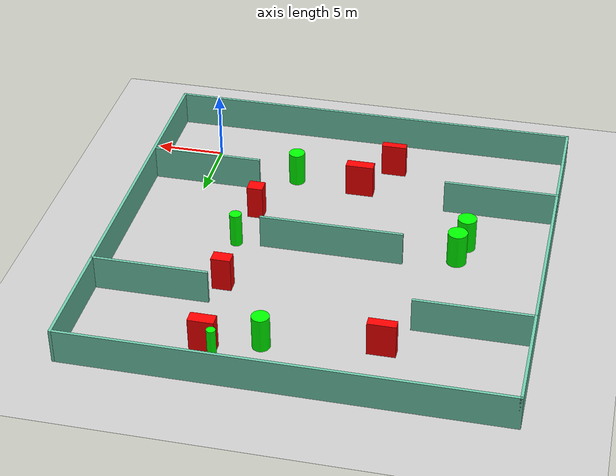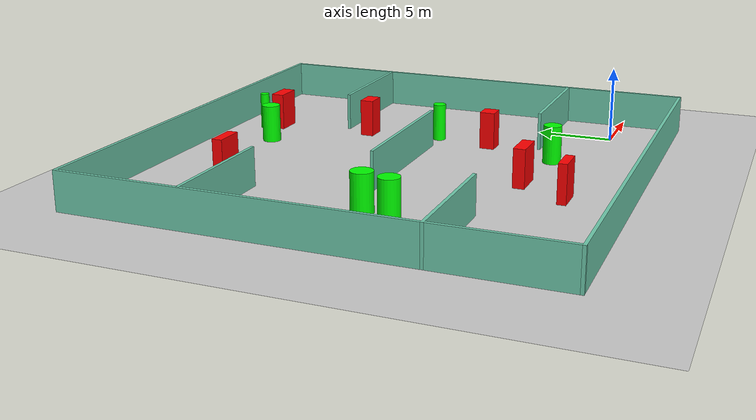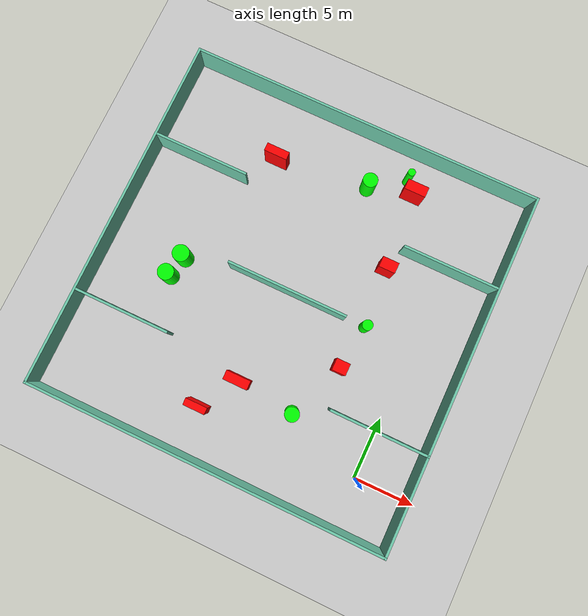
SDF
<sdf version="1.7">
 <world name="default">
  <light name="sun" type="directional">
   <pose>0 0 10 0 -0 0</pose>
   <diffuse>0.8 0.8 0.8 1</diffuse>
   <specular>0.2 0.2 0.2 1</specular>
   <attenuation>
    <range>1000</range>
    <constant>0.9</constant>
    <linear>0.01</linear>
    <quadratic>0.001</quadratic>
   </attenuation>
   <direction>-0.5 0.1 -0.9</direction>
   <spot><inner_angle>0</inner_angle><outer_angle>0</outer_angle><falloff>0</falloff></spot>
  </light>
  <model name="ground_plane">
   <static>1</static>
   <link name="link">
    <collision name="collision">
     <geometry><plane><normal>0 0 1</normal><size>100 100</size></plane></geometry>
     <surface>
      <contact><collide_bitmask>65535</collide_bitmask></contact>
      <friction><ode><mu>100</mu><mu2>50</mu2></ode></friction>
     </surface>
    </collision>
    <visual name="visual">
     <cast_shadows>0</cast_shadows>
     <geometry><plane><normal>0 0 1</normal><size>100 100</size></plane></geometry>
     <material>
      <script><uri>file://media/materials/scripts/gazebo.material</uri><name>Gazebo/Grey</name></script>
     </material>
    </visual>
   </link>
  </model>
  <gravity>0 0 -9.8</gravity>
  <magnetic_field>6e-06 2.3e-05 -4.2e-05</magnetic_field>
  <atmosphere type="adiabatic"/>
  <physics type="ode">
   <max_step_size>0.001</max_step_size>
   <real_time_factor>1</real_time_factor>
   <real_time_update_rate>1000</real_time_update_rate>
  </physics>
  <scene><ambient>0.4 0.4 0.4 1</ambient><background>0.7 0.7 0.7 1</background><shadows>1</shadows></scene>
  <spherical_coordinates>
   <surface_model>EARTH_WGS84</surface_model>
   <latitude_deg>0</latitude_deg>
   <longitude_deg>0</longitude_deg>
   <elevation>0</elevation>
   <heading_deg>0</heading_deg>
  </spherical_coordinates>
  <model name="my_base_walls">
   <link name="Wall_10">
    <collision name="Wall_10_Collision">
     <geometry><box><size>8.2 0.2 2.5</size></box></geometry>
     <pose>0 0 1.25 0 -0 0</pose>
    </collision>
    <visual name="Wall_10_Visual">
     <pose>0 0 1.25 0 -0 0</pose>
     <geometry><box><size>8.2 0.2 2.5</size></box></geometry>
     <material>
      <script><uri>file://media/materials/scripts/gazebo.material</uri><name>Gazebo/Grey</name></script>
      <ambient>0.435294 0.796078 0.67451 1</ambient>
     </material>
     <meta><layer>0</layer></meta>
    </visual>
    <pose>-11 -7 0 0 -0 0</pose>
   </link>
   <link name="Wall_12">
    <collision name="Wall_12_Collision">
     <geometry><box><size>8.2 0.2 2.5</size></box></geometry>
     <pose>0 0 1.25 0 -0 0</pose>
    </collision>
    <visual name="Wall_12_Visual">
     <pose>0 0 1.25 0 -0 0</pose>
     <geometry><box><size>8.2 0.2 2.5</size></box></geometry>
     <material>
      <script><uri>file://media/materials/scripts/gazebo.material</uri><name>Gazebo/Grey</name></script>
      <ambient>0.435294 0.796078 0.67451 1</ambient>
     </material>
     <meta><layer>0</layer></meta>
    </visual>
    <pose>-11 7 0 0 -0 0</pose>
   </link>
   <link name="Wall_14">
    <collision name="Wall_14_Collision">
     <geometry><box><size>8.2 0.2 2.5</size></box></geometry>
     <pose>0 0 1.25 0 -0 0</pose>
    </collision>
    <visual name="Wall_14_Visual">
     <pose>0 0 1.25 0 -0 0</pose>
     <geometry><box><size>8.2 0.2 2.5</size></box></geometry>
     <material>
      <script><uri>file://media/materials/scripts/gazebo.material</uri><name>Gazebo/Grey</name></script>
      <ambient>0.435294 0.796078 0.67451 1</ambient>
     </material>
     <meta><layer>0</layer></meta>
    </visual>
    <pose>11 7 0 0 -0 3.14159</pose>
   </link>
   <link name="Wall_16">
    <collision name="Wall_16_Collision">
     <geometry><box><size>10.2 0.2 2.5</size></box></geometry>
     <pose>0 0 1.25 0 -0 0</pose>
    </collision>
    <visual name="Wall_16_Visual">
     <pose>0 0 1.25 0 -0 0</pose>
     <geometry><box><size>10.2 0.2 2.5</size></box></geometry>
     <material>
      <script><uri>file://media/materials/scripts/gazebo.material</uri><name>Gazebo/Grey</name></script>
      <ambient>0.435294 0.796078 0.67451 1</ambient>
     </material>
     <meta><layer>0</layer></meta>
    </visual>
    <pose>0 0 0 0 -0 3.14159</pose>
   </link>
   <link name="Wall_2">
    <collision name="Wall_2_Collision">
     <geometry><box><size>30.2 0.2 2.5</size></box></geometry>
     <pose>0 0 1.25 0 -0 0</pose>
    </collision>
    <visual name="Wall_2_Visual">
     <pose>0 0 1.25 0 -0 0</pose>
     <geometry><box><size>30.2 0.2 2.5</size></box></geometry>
     <material>
      <script><uri>file://media/materials/scripts/gazebo.material</uri><name>Gazebo/Grey</name></script>
      <ambient>0.435294 0.796078 0.67451 1</ambient>
     </material>
     <meta><layer>0</layer></meta>
    </visual>
    <pose>0 -15 0 0 -0 3.14159</pose>
   </link>
   <link name="Wall_3">
    <collision name="Wall_3_Collision">
     <geometry><box><size>30.2 0.2 2.5</size></box></geometry>
     <pose>0 0 1.25 0 -0 0</pose>
    </collision>
    <visual name="Wall_3_Visual">
     <pose>0 0 1.25 0 -0 0</pose>
     <geometry><box><size>30.2 0.2 2.5</size></box></geometry>
     <material>
      <script><uri>file://media/materials/scripts/gazebo.material</uri><name>Gazebo/Grey</name></script>
      <ambient>0.435294 0.796078 0.67451 1</ambient>
     </material>
     <meta><layer>0</layer></meta>
    </visual>
    <pose>-15 0 0 0 -0 1.5708</pose>
   </link>
   <link name="Wall_4">
    <collision name="Wall_4_Collision">
     <geometry><box><size>30.2 0.2 2.5</size></box></geometry>
     <pose>0 0 1.25 0 -0 0</pose>
    </collision>
    <visual name="Wall_4_Visual">
     <pose>0 0 1.25 0 -0 0</pose>
     <geometry><box><size>30.2 0.2 2.5</size></box></geometry>
     <material>
      <script><uri>file://media/materials/scripts/gazebo.material</uri><name>Gazebo/Grey</name></script>
      <ambient>0.435294 0.796078 0.67451 1</ambient>
     </material>
     <meta><layer>0</layer></meta>
    </visual>
    <pose>0 15 0 0 -0 0</pose>
   </link>
   <link name="Wall_6">
    <collision name="Wall_6_Collision">
     <geometry><box><size>30.2 0.2 2.5</size></box></geometry>
     <pose>0 0 1.25 0 -0 0</pose>
    </collision>
    <visual name="Wall_6_Visual">
     <pose>0 0 1.25 0 -0 0</pose>
     <geometry><box><size>30.2 0.2 2.5</size></box></geometry>
     <material>
      <script><uri>file://media/materials/scripts/gazebo.material</uri><name>Gazebo/Grey</name></script>
      <ambient>0.435294 0.796078 0.67451 1</ambient>
     </material>
     <meta><layer>0</layer></meta>
    </visual>
    <pose>15 0 0 0 -0 1.5708</pose>
   </link>
   <link name="Wall_8">
    <collision name="Wall_8_Collision">
     <geometry><box><size>8.2 0.2 2.5</size></box></geometry>
     <pose>0 0 1.25 0 -0 0</pose>
    </collision>
    <visual name="Wall_8_Visual">
     <pose>0 0 1.25 0 -0 0</pose>
     <geometry><box><size>8.2 0.2 2.5</size></box></geometry>
     <material>
      <script><uri>file://media/materials/scripts/gazebo.material</uri><name>Gazebo/Grey</name></script>
      <ambient>0.435294 0.796078 0.67451 1</ambient>
     </material>
     <meta><layer>0</layer></meta>
    </visual>
    <pose>11 -7 0 0 -0 3.14159</pose>
   </link>
   <static>1</static>
   <pose>-11 11 0 0 -0 0</pose>
  </model>
  <model name="cylinder1">
   <static>1</static>
   <link name="link">
    <inertial>
     <mass>1</mass>
     <inertia><ixx>0.5</ixx><ixy>0</ixy><ixz>0</ixz><iyy>0.5</iyy><iyz>0</iyz><izz>1</izz></inertia>
    </inertial>
    <collision name="collision">
     <geometry><cylinder><radius>0.4322942740513289</radius><length>2.5</length></cylinder></geometry>
    </collision>
    <visual name="visual">
     <geometry><cylinder><radius>0.4322942740513289</radius><length>2.5</length></cylinder></geometry>
     <material>
      <ambient>0 1 0 1</ambient>
      <diffuse>0 1 0 1</diffuse>
      <specular>0.1 0.1 0.1 1</specular>
      <emissive>0 0 0 0</emissive>
     </material>
    </visual>
   </link>
   <pose>-4.1574430703029925 11.076409643737144 1.25 0 0 0</pose>
  </model>
  <model name="cylinder2">
   <static>1</static>
   <link name="link">
    <inertial>
     <mass>1</mass>
     <inertia><ixx>0.5</ixx><ixy>0</ixy><ixz>0</ixz><iyy>0.5</iyy><iyz>0</iyz><izz>1</izz></inertia>
    </inertial>
    <collision name="collision">
     <geometry><cylinder><radius>0.6946366986472085</radius><length>2.5</length></cylinder></geometry>
    </collision>
    <visual name="visual">
     <geometry><cylinder><radius>0.6946366986472085</radius><length>2.5</length></cylinder></geometry>
     <material>
      <ambient>0 1 0 1</ambient>
      <diffuse>0 1 0 1</diffuse>
      <specular>0.1 0.1 0.1 1</specular>
      <emissive>0 0 0 0</emissive>
     </material>
    </visual>
   </link>
   <pose>-19.75094981514031 10.010904324826388 1.25 0 0 0</pose>
  </model>
  <model name="cylinder3">
   <static>1</static>
   <link name="link">
    <inertial>
     <mass>1</mass>
     <inertia><ixx>0.5</ixx><ixy>0</ixy><ixz>0</ixz><iyy>0.5</iyy><iyz>0</iyz><izz>1</izz></inertia>
    </inertial>
    <collision name="collision">
     <geometry><cylinder><radius>0.5902229952519333</radius><length>2.5</length></cylinder></geometry>
    </collision>
    <visual name="visual">
     <geometry><cylinder><radius>0.5902229952519333</radius><length>2.5</length></cylinder></geometry>
     <material>
      <ambient>0 1 0 1</ambient>
      <diffuse>0 1 0 1</diffuse>
      <specular>0.1 0.1 0.1 1</specular>
      <emissive>0 0 0 0</emissive>
     </material>
    </visual>
   </link>
   <pose>-6.5687925505995 2.465195005099895 1.25 0 0 0</pose>
  </model>
  <model name="cylinder4">
   <static>1</static>
   <link name="link">
    <inertial>
     <mass>1</mass>
     <inertia><ixx>0.5</ixx><ixy>0</ixy><ixz>0</ixz><iyy>0.5</iyy><iyz>0</iyz><izz>1</izz></inertia>
    </inertial>
    <collision name="collision">
     <geometry><cylinder><radius>0.3113923957579166</radius><length>2.5</length></cylinder></geometry>
    </collision>
    <visual name="visual">
     <geometry><cylinder><radius>0.3113923957579166</radius><length>2.5</length></cylinder></geometry>
     <material>
      <ambient>0 1 0 1</ambient>
      <diffuse>0 1 0 1</diffuse>
      <specular>0.1 0.1 0.1 1</specular>
      <emissive>0 0 0 0</emissive>
     </material>
    </visual>
   </link>
   <pose>-5.9573164723541225 23.758321998023803 1.25 0 0 0</pose>
  </model>
  <model name="cylinder5">
   <static>1</static>
   <link name="link">
    <inertial>
     <mass>1</mass>
     <inertia><ixx>0.5</ixx><ixy>0</ixy><ixz>0</ixz><iyy>0.5</iyy><iyz>0</iyz><izz>1</izz></inertia>
    </inertial>
    <collision name="collision">
     <geometry><cylinder><radius>0.6704919149995483</radius><length>2.5</length></cylinder></geometry>
    </collision>
    <visual name="visual">
     <geometry><cylinder><radius>0.6704919149995483</radius><length>2.5</length></cylinder></geometry>
     <material>
      <ambient>0 1 0 1</ambient>
      <diffuse>0 1 0 1</diffuse>
      <specular>0.1 0.1 0.1 1</specular>
      <emissive>0 0 0 0</emissive>
     </material>
    </visual>
   </link>
   <pose>-20.155994789797873 8.184826184275122 1.25 0 0 0</pose>
  </model>
  <model name="cylinder6">
   <static>1</static>
   <link name="link">
    <inertial>
     <mass>1</mass>
     <inertia><ixx>0.5</ixx><ixy>0</ixy><ixz>0</ixz><iyy>0.5</iyy><iyz>0</iyz><izz>1</izz></inertia>
    </inertial>
    <collision name="collision">
     <geometry><cylinder><radius>0.6106375953591483</radius><length>2.5</length></cylinder></geometry>
    </collision>
    <visual name="visual">
     <geometry><cylinder><radius>0.6106375953591483</radius><length>2.5</length></cylinder></geometry>
     <material>
      <ambient>0 1 0 1</ambient>
      <diffuse>0 1 0 1</diffuse>
      <specular>0.1 0.1 0.1 1</specular>
      <emissive>0 0 0 0</emissive>
     </material>
    </visual>
   </link>
   <pose>-8.692620603152312 21.769091606447923 1.25 0 0 0</pose>
  </model>
  <model name="box1">
   <static>1</static>
   <link name="link">
    <inertial>
     <mass>1</mass>
     <inertia><ixx>0.083</ixx><ixy>0</ixy><ixz>0</ixz><iyy>0.083</iyy><iyz>0</iyz><izz>0.083</izz></inertia>
    </inertial>
    <collision name="collision">
     <geometry><box><size>2.035632376576724 0.7586988552925673 2.5</size></box></geometry>
    </collision>
    <visual name="visual">
     <geometry><box><size>2.035632376576724 0.7586988552925673 2.5</size></box></geometry>
     <material>
      <ambient>1 0 0 1</ambient>
      <diffuse>1 0 0 1</diffuse>
      <specular>0.1 0.1 0.1 1</specular>
      <emissive>0 0 0 0</emissive>
     </material>
    </visual>
    <sensor name="my_contact" type="contact">
     <contact><collision>box_collision</collision><topic>__default_topic__</topic></contact>
    </sensor>
   </link>
   <pose>-11.47977628563122 3.0023195489448575 1.25 0 0 0</pose>
  </model>
  <model name="box2">
   <static>1</static>
   <link name="link">
    <inertial>
     <mass>1</mass>
     <inertia><ixx>0.083</ixx><ixy>0</ixy><ixz>0</ixz><iyy>0.083</iyy><iyz>0</iyz><izz>0.083</izz></inertia>
    </inertial>
    <collision name="collision">
     <geometry><box><size>1.8205269333041003 0.5650340435020178 2.5</size></box></geometry>
    </collision>
    <visual name="visual">
     <geometry><box><size>1.8205269333041003 0.5650340435020178 2.5</size></box></geometry>
     <material>
      <ambient>1 0 0 1</ambient>
      <diffuse>1 0 0 1</diffuse>
      <specular>0.1 0.1 0.1 1</specular>
      <emissive>0 0 0 0</emissive>
     </material>
    </visual>
    <sensor name="my_contact" type="contact">
     <contact><collision>box_collision</collision><topic>__default_topic__</topic></contact>
    </sensor>
   </link>
   <pose>-13.480469918191517 -0.10503489204824135 1.25 0 0 0</pose>
  </model>
  <model name="box3">
   <static>1</static>
   <link name="link">
    <inertial>
     <mass>1</mass>
     <inertia><ixx>0.083</ixx><ixy>0</ixy><ixz>0</ixz><iyy>0.083</iyy><iyz>0</iyz><izz>0.083</izz></inertia>
    </inertial>
    <collision name="collision">
     <geometry><box><size>1.3605144004422578 0.8929130879373928 2.5</size></box></geometry>
    </collision>
    <visual name="visual">
     <geometry><box><size>1.3605144004422578 0.8929130879373928 2.5</size></box></geometry>
     <material>
      <ambient>1 0 0 1</ambient>
      <diffuse>1 0 0 1</diffuse>
      <specular>0.1 0.1 0.1 1</specular>
      <emissive>0 0 0 0</emissive>
     </material>
    </visual>
    <sensor name="my_contact" type="contact">
     <contact><collision>box_collision</collision><topic>__default_topic__</topic></contact>
    </sensor>
   </link>
   <pose>-4.569769398763942 16.104305586401875 1.25 0 0 0</pose>
  </model>
  <model name="box4">
   <static>1</static>
   <link name="link">
    <inertial>
     <mass>1</mass>
     <inertia><ixx>0.083</ixx><ixy>0</ixy><ixz>0</ixz><iyy>0.083</iyy><iyz>0</iyz><izz>0.083</izz></inertia>
    </inertial>
    <collision name="collision">
     <geometry><box><size>1.1394161261551239 0.9874520131622201 2.5</size></box></geometry>
    </collision>
    <visual name="visual">
     <geometry><box><size>1.1394161261551239 0.9874520131622201 2.5</size></box></geometry>
     <material>
      <ambient>1 0 0 1</ambient>
      <diffuse>1 0 0 1</diffuse>
      <specular>0.1 0.1 0.1 1</specular>
      <emissive>0 0 0 0</emissive>
     </material>
    </visual>
    <sensor name="my_contact" type="contact">
     <contact><collision>box_collision</collision><topic>__default_topic__</topic></contact>
    </sensor>
   </link>
   <pose>-4.6816534798568235 7.294558936744071 1.25 0 0 0</pose>
  </model>
  <model name="box5">
   <static>1</static>
   <link name="link">
    <inertial>
     <mass>1</mass>
     <inertia><ixx>0.083</ixx><ixy>0</ixy><ixz>0</ixz><iyy>0.083</iyy><iyz>0</iyz><izz>0.083</izz></inertia>
    </inertial>
    <collision name="collision">
     <geometry><box><size>1.948383752527588 0.6761328909720922 2.5</size></box></geometry>
    </collision>
    <visual name="visual">
     <geometry><box><size>1.948383752527588 0.6761328909720922 2.5</size></box></geometry>
     <material>
      <ambient>1 0 0 1</ambient>
      <diffuse>1 0 0 1</diffuse>
      <specular>0.1 0.1 0.1 1</specular>
      <emissive>0 0 0 0</emissive>
     </material>
    </visual>
    <sensor name="my_contact" type="contact">
     <contact><collision>box_collision</collision><topic>__default_topic__</topic></contact>
    </sensor>
   </link>
   <pose>-16.477870782595225 20.75982109817658 1.25 0 0 0</pose>
  </model>
  <model name="box6">
   <static>1</static>
   <link name="link">
    <inertial>
     <mass>1</mass>
     <inertia><ixx>0.083</ixx><ixy>0</ixy><ixz>0</ixz><iyy>0.083</iyy><iyz>0</iyz><izz>0.083</izz></inertia>
    </inertial>
    <collision name="collision">
     <geometry><box><size>1.7772788059770739 0.8590618617193652 2.5</size></box></geometry>
    </collision>
    <visual name="visual">
     <geometry><box><size>1.7772788059770739 0.8590618617193652 2.5</size></box></geometry>
     <material>
      <ambient>1 0 0 1</ambient>
      <diffuse>1 0 0 1</diffuse>
      <specular>0.1 0.1 0.1 1</specular>
      <emissive>0 0 0 0</emissive>
     </material>
    </visual>
    <sensor name="my_contact" type="contact">
     <contact><collision>box_collision</collision><topic>__default_topic__</topic></contact>
    </sensor>
   </link>
   <pose>-5.07706051512009 22.735912780311487 1.25 0 0 0</pose>
  </model>
 </world>
</sdf>
